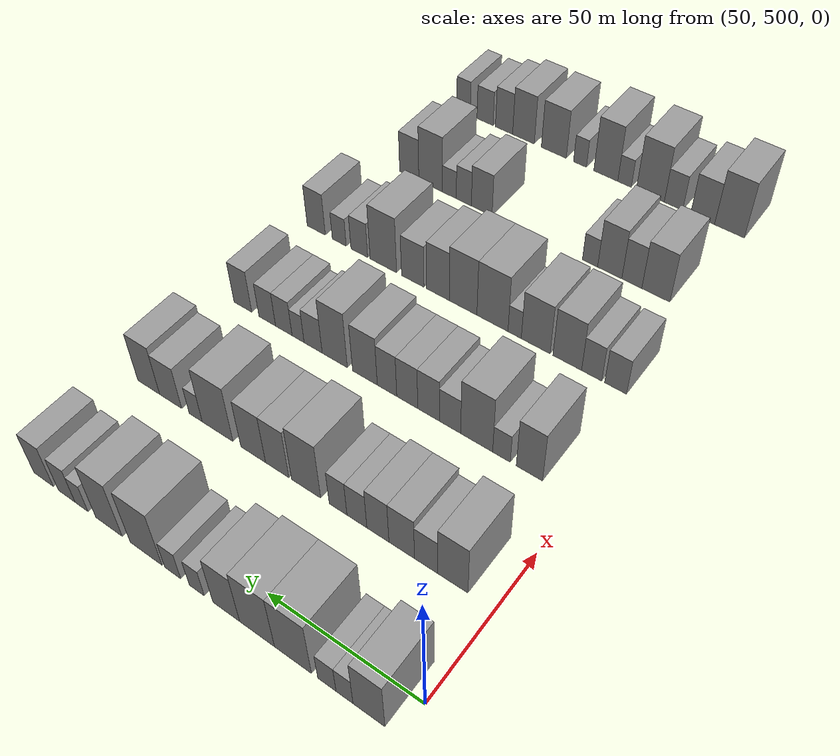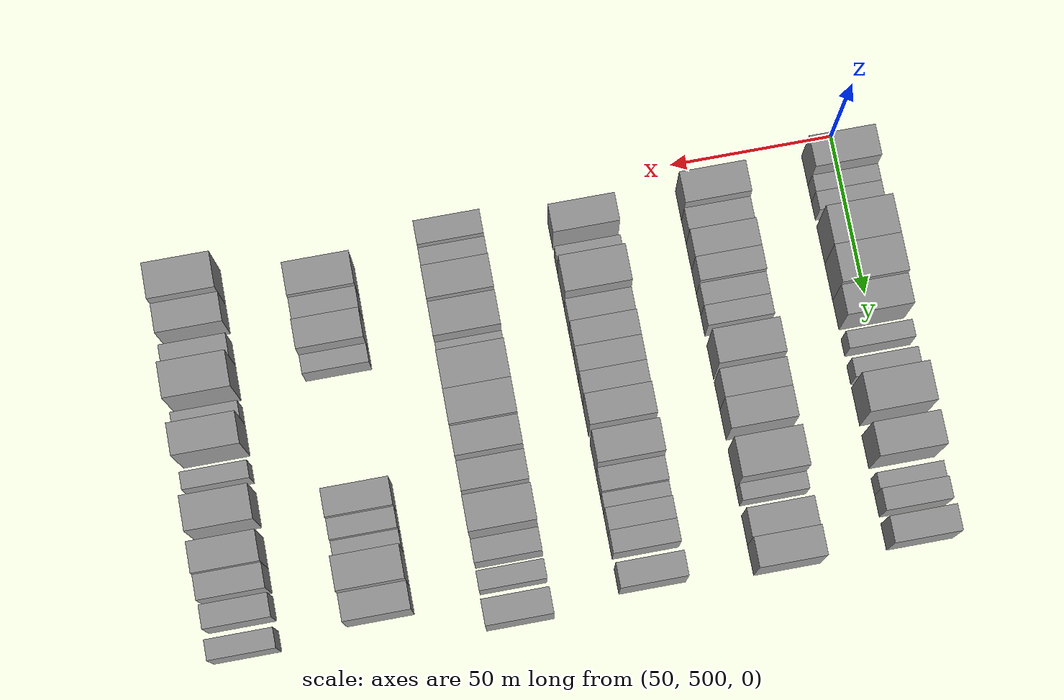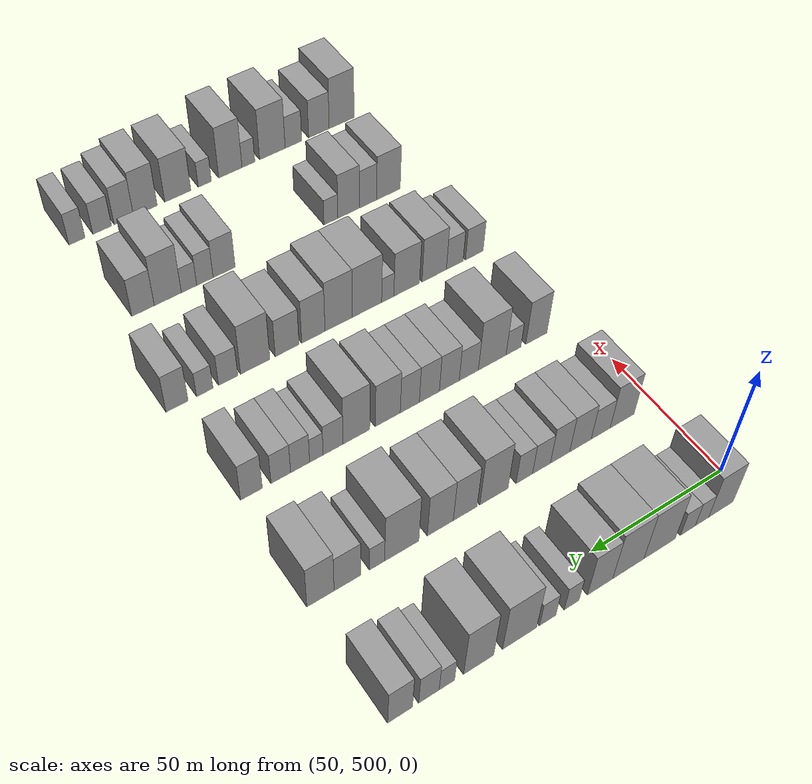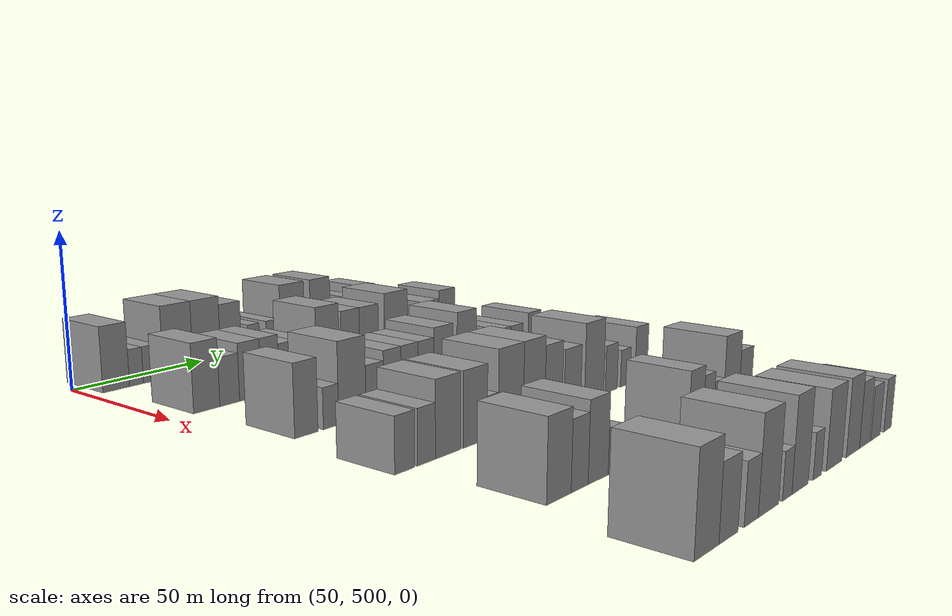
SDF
<sdf version="1.6">
 <world name="default">
  <model name="building_130">
   <static>1</static>
   <pose>50.0000 509.2486 0 0.000000 0.000000 0.000000</pose>
   <link name="link">
    <pose>0 0 10.50 0 0 0</pose>
    <collision name="collision"><geometry><box><size>20.0000 9.6193 21.0000</size></box></geometry></collision>
    <visual name="visual">
     <cast_shadows>0</cast_shadows>
     <geometry><box><size>20.0000 9.6193 21.0000</size></box></geometry>
     <material>
      <script>
       <uri>model://grey_wall/materials/scripts</uri>
       <uri>model://grey_wall/materials/textures</uri>
       <name>vrc/grey_wall</name>
      </script>
     </material>
    </visual>
   </link>
  </model>
  <model name="building_131">
   <static>1</static>
   <pose>50.0000 516.6733 0 0.000000 0.000000 0.000000</pose>
   <link name="link">
    <pose>0 0 6.00 0 0 0</pose>
    <collision name="collision"><geometry><box><size>20.0000 5.2300 12.0000</size></box></geometry></collision>
    <visual name="visual">
     <cast_shadows>0</cast_shadows>
     <geometry><box><size>20.0000 5.2300 12.0000</size></box></geometry>
     <material>
      <script>
       <uri>model://grey_wall/materials/scripts</uri>
       <uri>model://grey_wall/materials/textures</uri>
       <name>vrc/grey_wall</name>
      </script>
     </material>
    </visual>
   </link>
  </model>
  <model name="building_132">
   <static>1</static>
   <pose>50.0000 522.1440 0 0.000000 0.000000 0.000000</pose>
   <link name="link">
    <pose>0 0 6.00 0 0 0</pose>
    <collision name="collision"><geometry><box><size>20.0000 5.7116 12.0000</size></box></geometry></collision>
    <visual name="visual">
     <cast_shadows>0</cast_shadows>
     <geometry><box><size>20.0000 5.7116 12.0000</size></box></geometry>
     <material>
      <script>
       <uri>model://grey_wall/materials/scripts</uri>
       <uri>model://grey_wall/materials/textures</uri>
       <name>vrc/grey_wall</name>
      </script>
     </material>
    </visual>
   </link>
  </model>
  <model name="building_133">
   <static>1</static>
   <pose>50.0000 532.9464 0 0.000000 0.000000 0.000000</pose>
   <link name="link">
    <pose>0 0 12.00 0 0 0</pose>
    <collision name="collision"><geometry><box><size>20.0000 11.8932 24.0000</size></box></geometry></collision>
    <visual name="visual">
     <cast_shadows>0</cast_shadows>
     <geometry><box><size>20.0000 11.8932 24.0000</size></box></geometry>
     <material>
      <script>
       <uri>model://grey_wall/materials/scripts</uri>
       <uri>model://grey_wall/materials/textures</uri>
       <name>vrc/grey_wall</name>
      </script>
     </material>
    </visual>
   </link>
  </model>
  <model name="building_134">
   <static>1</static>
   <pose>50.0000 544.6984 0 0.000000 0.000000 0.000000</pose>
   <link name="link">
    <pose>0 0 12.00 0 0 0</pose>
    <collision name="collision"><geometry><box><size>20.0000 11.6107 24.0000</size></box></geometry></collision>
    <visual name="visual">
     <cast_shadows>0</cast_shadows>
     <geometry><box><size>20.0000 11.6107 24.0000</size></box></geometry>
     <material>
      <script>
       <uri>model://grey_wall/materials/scripts</uri>
       <uri>model://grey_wall/materials/textures</uri>
       <name>vrc/grey_wall</name>
      </script>
     </material>
    </visual>
   </link>
  </model>
  <model name="building_135">
   <static>1</static>
   <pose>50.0000 555.0788 0 0.000000 0.000000 0.000000</pose>
   <link name="link">
    <pose>0 0 10.50 0 0 0</pose>
    <collision name="collision"><geometry><box><size>20.0000 9.1502 21.0000</size></box></geometry></collision>
    <visual name="visual">
     <cast_shadows>0</cast_shadows>
     <geometry><box><size>20.0000 9.1502 21.0000</size></box></geometry>
     <material>
      <script>
       <uri>model://grey_wall/materials/scripts</uri>
       <uri>model://grey_wall/materials/textures</uri>
       <name>vrc/grey_wall</name>
      </script>
     </material>
    </visual>
   </link>
  </model>
  <model name="building_136">
   <static>1</static>
   <pose>50.0000 565.3032 0 0.000000 0.000000 0.000000</pose>
   <link name="link">
    <pose>0 0 6.00 0 0 0</pose>
    <collision name="collision"><geometry><box><size>20.0000 5.2984 12.0000</size></box></geometry></collision>
    <visual name="visual">
     <cast_shadows>0</cast_shadows>
     <geometry><box><size>20.0000 5.2984 12.0000</size></box></geometry>
     <material>
      <script>
       <uri>model://grey_wall/materials/scripts</uri>
       <uri>model://grey_wall/materials/textures</uri>
       <name>vrc/grey_wall</name>
      </script>
     </material>
    </visual>
   </link>
  </model>
  <model name="building_137">
   <static>1</static>
   <pose>50.0000 573.8199 0 0.000000 0.000000 0.000000</pose>
   <link name="link">
    <pose>0 0 6.00 0 0 0</pose>
    <collision name="collision"><geometry><box><size>20.0000 5.7351 12.0000</size></box></geometry></collision>
    <visual name="visual">
     <cast_shadows>0</cast_shadows>
     <geometry><box><size>20.0000 5.7351 12.0000</size></box></geometry>
     <material>
      <script>
       <uri>model://grey_wall/materials/scripts</uri>
       <uri>model://grey_wall/materials/textures</uri>
       <name>vrc/grey_wall</name>
      </script>
     </material>
    </visual>
   </link>
  </model>
  <model name="building_138">
   <static>1</static>
   <pose>50.0000 583.5633 0 0.000000 0.000000 0.000000</pose>
   <link name="link">
    <pose>0 0 12.00 0 0 0</pose>
    <collision name="collision"><geometry><box><size>20.0000 11.7516 24.0000</size></box></geometry></collision>
    <visual name="visual">
     <cast_shadows>0</cast_shadows>
     <geometry><box><size>20.0000 11.7516 24.0000</size></box></geometry>
     <material>
      <script>
       <uri>model://grey_wall/materials/scripts</uri>
       <uri>model://grey_wall/materials/textures</uri>
       <name>vrc/grey_wall</name>
      </script>
     </material>
    </visual>
   </link>
  </model>
  <model name="building_139">
   <static>1</static>
   <pose>50.0000 597.5009 0 0.000000 0.000000 0.000000</pose>
   <link name="link">
    <pose>0 0 12.00 0 0 0</pose>
    <collision name="collision"><geometry><box><size>20.0000 10.1237 24.0000</size></box></geometry></collision>
    <visual name="visual">
     <cast_shadows>0</cast_shadows>
     <geometry><box><size>20.0000 10.1237 24.0000</size></box></geometry>
     <material>
      <script>
       <uri>model://grey_wall/materials/scripts</uri>
       <uri>model://grey_wall/materials/textures</uri>
       <name>vrc/grey_wall</name>
      </script>
     </material>
    </visual>
   </link>
  </model>
  <model name="building_140">
   <static>1</static>
   <pose>50.0000 608.1023 0 0.000000 0.000000 0.000000</pose>
   <link name="link">
    <pose>0 0 6.00 0 0 0</pose>
    <collision name="collision"><geometry><box><size>20.0000 5.0792 12.0000</size></box></geometry></collision>
    <visual name="visual">
     <cast_shadows>0</cast_shadows>
     <geometry><box><size>20.0000 5.0792 12.0000</size></box></geometry>
     <material>
      <script>
       <uri>model://grey_wall/materials/scripts</uri>
       <uri>model://grey_wall/materials/textures</uri>
       <name>vrc/grey_wall</name>
      </script>
     </material>
    </visual>
   </link>
  </model>
  <model name="building_141">
   <static>1</static>
   <pose>50.0000 613.9682 0 0.000000 0.000000 0.000000</pose>
   <link name="link">
    <pose>0 0 7.50 0 0 0</pose>
    <collision name="collision"><geometry><box><size>20.0000 6.6525 15.0000</size></box></geometry></collision>
    <visual name="visual">
     <cast_shadows>0</cast_shadows>
     <geometry><box><size>20.0000 6.6525 15.0000</size></box></geometry>
     <material>
      <script>
       <uri>model://grey_wall/materials/scripts</uri>
       <uri>model://grey_wall/materials/textures</uri>
       <name>vrc/grey_wall</name>
      </script>
     </material>
    </visual>
   </link>
  </model>
  <model name="building_142">
   <static>1</static>
   <pose>50.0000 623.2729 0 0.000000 0.000000 0.000000</pose>
   <link name="link">
    <pose>0 0 9.00 0 0 0</pose>
    <collision name="collision"><geometry><box><size>20.0000 7.9570 18.0000</size></box></geometry></collision>
    <visual name="visual">
     <cast_shadows>0</cast_shadows>
     <geometry><box><size>20.0000 7.9570 18.0000</size></box></geometry>
     <material>
      <script>
       <uri>model://grey_wall/materials/scripts</uri>
       <uri>model://grey_wall/materials/textures</uri>
       <name>vrc/grey_wall</name>
      </script>
     </material>
    </visual>
   </link>
  </model>
  <model name="building_251">
   <static>1</static>
   <pose>90.0000 513.0584 0 0.000000 0.000000 0.000000</pose>
   <link name="link">
    <pose>0 0 10.50 0 0 0</pose>
    <collision name="collision"><geometry><box><size>20.0000 9.5752 21.0000</size></box></geometry></collision>
    <visual name="visual">
     <cast_shadows>0</cast_shadows>
     <geometry><box><size>20.0000 9.5752 21.0000</size></box></geometry>
     <material>
      <script>
       <uri>model://grey_wall/materials/scripts</uri>
       <uri>model://grey_wall/materials/textures</uri>
       <name>vrc/grey_wall</name>
      </script>
     </material>
    </visual>
   </link>
  </model>
  <model name="building_252">
   <static>1</static>
   <pose>90.0000 521.5767 0 0.000000 0.000000 0.000000</pose>
   <link name="link">
    <pose>0 0 7.50 0 0 0</pose>
    <collision name="collision"><geometry><box><size>20.0000 7.4614 15.0000</size></box></geometry></collision>
    <visual name="visual">
     <cast_shadows>0</cast_shadows>
     <geometry><box><size>20.0000 7.4614 15.0000</size></box></geometry>
     <material>
      <script>
       <uri>model://grey_wall/materials/scripts</uri>
       <uri>model://grey_wall/materials/textures</uri>
       <name>vrc/grey_wall</name>
      </script>
     </material>
    </visual>
   </link>
  </model>
  <model name="building_253">
   <static>1</static>
   <pose>90.0000 529.5255 0 0.000000 0.000000 0.000000</pose>
   <link name="link">
    <pose>0 0 9.00 0 0 0</pose>
    <collision name="collision"><geometry><box><size>20.0000 8.4363 18.0000</size></box></geometry></collision>
    <visual name="visual">
     <cast_shadows>0</cast_shadows>
     <geometry><box><size>20.0000 8.4363 18.0000</size></box></geometry>
     <material>
      <script>
       <uri>model://grey_wall/materials/scripts</uri>
       <uri>model://grey_wall/materials/textures</uri>
       <name>vrc/grey_wall</name>
      </script>
     </material>
    </visual>
   </link>
  </model>
  <model name="building_254">
   <static>1</static>
   <pose>90.0000 537.4554 0 0.000000 0.000000 0.000000</pose>
   <link name="link">
    <pose>0 0 9.00 0 0 0</pose>
    <collision name="collision"><geometry><box><size>20.0000 7.4234 18.0000</size></box></geometry></collision>
    <visual name="visual">
     <cast_shadows>0</cast_shadows>
     <geometry><box><size>20.0000 7.4234 18.0000</size></box></geometry>
     <material>
      <script>
       <uri>model://grey_wall/materials/scripts</uri>
       <uri>model://grey_wall/materials/textures</uri>
       <name>vrc/grey_wall</name>
      </script>
     </material>
    </visual>
   </link>
  </model>
  <model name="building_255">
   <static>1</static>
   <pose>90.0000 544.5728 0 0.000000 0.000000 0.000000</pose>
   <link name="link">
    <pose>0 0 7.50 0 0 0</pose>
    <collision name="collision"><geometry><box><size>20.0000 6.8114 15.0000</size></box></geometry></collision>
    <visual name="visual">
     <cast_shadows>0</cast_shadows>
     <geometry><box><size>20.0000 6.8114 15.0000</size></box></geometry>
     <material>
      <script>
       <uri>model://grey_wall/materials/scripts</uri>
       <uri>model://grey_wall/materials/textures</uri>
       <name>vrc/grey_wall</name>
      </script>
     </material>
    </visual>
   </link>
  </model>
  <model name="building_256">
   <static>1</static>
   <pose>90.0000 551.0683 0 0.000000 0.000000 0.000000</pose>
   <link name="link">
    <pose>0 0 7.50 0 0 0</pose>
    <collision name="collision"><geometry><box><size>20.0000 6.1797 15.0000</size></box></geometry></collision>
    <visual name="visual">
     <cast_shadows>0</cast_shadows>
     <geometry><box><size>20.0000 6.1797 15.0000</size></box></geometry>
     <material>
      <script>
       <uri>model://grey_wall/materials/scripts</uri>
       <uri>model://grey_wall/materials/textures</uri>
       <name>vrc/grey_wall</name>
      </script>
     </material>
    </visual>
   </link>
  </model>
  <model name="building_257">
   <static>1</static>
   <pose>90.0000 562.3625 0 0.000000 0.000000 0.000000</pose>
   <link name="link">
    <pose>0 0 12.00 0 0 0</pose>
    <collision name="collision"><geometry><box><size>20.0000 10.4087 24.0000</size></box></geometry></collision>
    <visual name="visual">
     <cast_shadows>0</cast_shadows>
     <geometry><box><size>20.0000 10.4087 24.0000</size></box></geometry>
     <material>
      <script>
       <uri>model://grey_wall/materials/scripts</uri>
       <uri>model://grey_wall/materials/textures</uri>
       <name>vrc/grey_wall</name>
      </script>
     </material>
    </visual>
   </link>
  </model>
  <model name="building_258">
   <static>1</static>
   <pose>90.0000 572.8558 0 0.000000 0.000000 0.000000</pose>
   <link name="link">
    <pose>0 0 10.50 0 0 0</pose>
    <collision name="collision"><geometry><box><size>20.0000 8.5778 21.0000</size></box></geometry></collision>
    <visual name="visual">
     <cast_shadows>0</cast_shadows>
     <geometry><box><size>20.0000 8.5778 21.0000</size></box></geometry>
     <material>
      <script>
       <uri>model://grey_wall/materials/scripts</uri>
       <uri>model://grey_wall/materials/textures</uri>
       <name>vrc/grey_wall</name>
      </script>
     </material>
    </visual>
   </link>
  </model>
  <model name="building_259">
   <static>1</static>
   <pose>90.0000 581.7766 0 0.000000 0.000000 0.000000</pose>
   <link name="link">
    <pose>0 0 10.50 0 0 0</pose>
    <collision name="collision"><geometry><box><size>20.0000 9.2639 21.0000</size></box></geometry></collision>
    <visual name="visual">
     <cast_shadows>0</cast_shadows>
     <geometry><box><size>20.0000 9.2639 21.0000</size></box></geometry>
     <material>
      <script>
       <uri>model://grey_wall/materials/scripts</uri>
       <uri>model://grey_wall/materials/textures</uri>
       <name>vrc/grey_wall</name>
      </script>
     </material>
    </visual>
   </link>
  </model>
  <model name="building_260">
   <static>1</static>
   <pose>90.0000 595.3792 0 0.000000 0.000000 0.000000</pose>
   <link name="link">
    <pose>0 0 12.00 0 0 0</pose>
    <collision name="collision"><geometry><box><size>20.0000 11.9413 24.0000</size></box></geometry></collision>
    <visual name="visual">
     <cast_shadows>0</cast_shadows>
     <geometry><box><size>20.0000 11.9413 24.0000</size></box></geometry>
     <material>
      <script>
       <uri>model://grey_wall/materials/scripts</uri>
       <uri>model://grey_wall/materials/textures</uri>
       <name>vrc/grey_wall</name>
      </script>
     </material>
    </visual>
   </link>
  </model>
  <model name="building_261">
   <static>1</static>
   <pose>90.0000 603.9198 0 0.000000 0.000000 0.000000</pose>
   <link name="link">
    <pose>0 0 6.00 0 0 0</pose>
    <collision name="collision"><geometry><box><size>20.0000 5.1398 12.0000</size></box></geometry></collision>
    <visual name="visual">
     <cast_shadows>0</cast_shadows>
     <geometry><box><size>20.0000 5.1398 12.0000</size></box></geometry>
     <material>
      <script>
       <uri>model://grey_wall/materials/scripts</uri>
       <uri>model://grey_wall/materials/textures</uri>
       <name>vrc/grey_wall</name>
      </script>
     </material>
    </visual>
   </link>
  </model>
  <model name="building_262">
   <static>1</static>
   <pose>90.0000 613.9476 0 0.000000 0.000000 0.000000</pose>
   <link name="link">
    <pose>0 0 9.00 0 0 0</pose>
    <collision name="collision"><geometry><box><size>20.0000 8.9159 18.0000</size></box></geometry></collision>
    <visual name="visual">
     <cast_shadows>0</cast_shadows>
     <geometry><box><size>20.0000 8.9159 18.0000</size></box></geometry>
     <material>
      <script>
       <uri>model://grey_wall/materials/scripts</uri>
       <uri>model://grey_wall/materials/textures</uri>
       <name>vrc/grey_wall</name>
      </script>
     </material>
    </visual>
   </link>
  </model>
  <model name="building_263">
   <static>1</static>
   <pose>90.0000 622.9202 0 0.000000 0.000000 0.000000</pose>
   <link name="link">
    <pose>0 0 10.50 0 0 0</pose>
    <collision name="collision"><geometry><box><size>20.0000 9.0294 21.0000</size></box></geometry></collision>
    <visual name="visual">
     <cast_shadows>0</cast_shadows>
     <geometry><box><size>20.0000 9.0294 21.0000</size></box></geometry>
     <material>
      <script>
       <uri>model://grey_wall/materials/scripts</uri>
       <uri>model://grey_wall/materials/textures</uri>
       <name>vrc/grey_wall</name>
      </script>
     </material>
    </visual>
   </link>
  </model>
  <model name="building_386">
   <static>1</static>
   <pose>130.0000 515.2641 0 0.000000 0.000000 0.000000</pose>
   <link name="link">
    <pose>0 0 10.50 0 0 0</pose>
    <collision name="collision"><geometry><box><size>20.0000 8.6406 21.0000</size></box></geometry></collision>
    <visual name="visual">
     <cast_shadows>0</cast_shadows>
     <geometry><box><size>20.0000 8.6406 21.0000</size></box></geometry>
     <material>
      <script>
       <uri>model://grey_wall/materials/scripts</uri>
       <uri>model://grey_wall/materials/textures</uri>
       <name>vrc/grey_wall</name>
      </script>
     </material>
    </visual>
   </link>
  </model>
  <model name="building_387">
   <static>1</static>
   <pose>130.0000 524.5528 0 0.000000 0.000000 0.000000</pose>
   <link name="link">
    <pose>0 0 6.00 0 0 0</pose>
    <collision name="collision"><geometry><box><size>20.0000 5.9367 12.0000</size></box></geometry></collision>
    <visual name="visual">
     <cast_shadows>0</cast_shadows>
     <geometry><box><size>20.0000 5.9367 12.0000</size></box></geometry>
     <material>
      <script>
       <uri>model://grey_wall/materials/scripts</uri>
       <uri>model://grey_wall/materials/textures</uri>
       <name>vrc/grey_wall</name>
      </script>
     </material>
    </visual>
   </link>
  </model>
  <model name="building_388">
   <static>1</static>
   <pose>130.0000 533.0314 0 0.000000 0.000000 0.000000</pose>
   <link name="link">
    <pose>0 0 12.00 0 0 0</pose>
    <collision name="collision"><geometry><box><size>20.0000 11.0206 24.0000</size></box></geometry></collision>
    <visual name="visual">
     <cast_shadows>0</cast_shadows>
     <geometry><box><size>20.0000 11.0206 24.0000</size></box></geometry>
     <material>
      <script>
       <uri>model://grey_wall/materials/scripts</uri>
       <uri>model://grey_wall/materials/textures</uri>
       <name>vrc/grey_wall</name>
      </script>
     </material>
    </visual>
   </link>
  </model>
  <model name="building_389">
   <static>1</static>
   <pose>130.0000 542.2891 0 0.000000 0.000000 0.000000</pose>
   <link name="link">
    <pose>0 0 7.50 0 0 0</pose>
    <collision name="collision"><geometry><box><size>20.0000 7.4950 15.0000</size></box></geometry></collision>
    <visual name="visual">
     <cast_shadows>0</cast_shadows>
     <geometry><box><size>20.0000 7.4950 15.0000</size></box></geometry>
     <material>
      <script>
       <uri>model://grey_wall/materials/scripts</uri>
       <uri>model://grey_wall/materials/textures</uri>
       <name>vrc/grey_wall</name>
      </script>
     </material>
    </visual>
   </link>
  </model>
  <model name="building_390">
   <static>1</static>
   <pose>130.0000 549.8821 0 0.000000 0.000000 0.000000</pose>
   <link name="link">
    <pose>0 0 9.00 0 0 0</pose>
    <collision name="collision"><geometry><box><size>20.0000 7.6910 18.0000</size></box></geometry></collision>
    <visual name="visual">
     <cast_shadows>0</cast_shadows>
     <geometry><box><size>20.0000 7.6910 18.0000</size></box></geometry>
     <material>
      <script>
       <uri>model://grey_wall/materials/scripts</uri>
       <uri>model://grey_wall/materials/textures</uri>
       <name>vrc/grey_wall</name>
      </script>
     </material>
    </visual>
   </link>
  </model>
  <model name="building_391">
   <static>1</static>
   <pose>130.0000 557.5513 0 0.000000 0.000000 0.000000</pose>
   <link name="link">
    <pose>0 0 9.00 0 0 0</pose>
    <collision name="collision"><geometry><box><size>20.0000 7.6474 18.0000</size></box></geometry></collision>
    <visual name="visual">
     <cast_shadows>0</cast_shadows>
     <geometry><box><size>20.0000 7.6474 18.0000</size></box></geometry>
     <material>
      <script>
       <uri>model://grey_wall/materials/scripts</uri>
       <uri>model://grey_wall/materials/textures</uri>
       <name>vrc/grey_wall</name>
      </script>
     </material>
    </visual>
   </link>
  </model>
  <model name="building_392">
   <static>1</static>
   <pose>130.0000 564.9790 0 0.000000 0.000000 0.000000</pose>
   <link name="link">
    <pose>0 0 9.00 0 0 0</pose>
    <collision name="collision"><geometry><box><size>20.0000 7.2078 18.0000</size></box></geometry></collision>
    <visual name="visual">
     <cast_shadows>0</cast_shadows>
     <geometry><box><size>20.0000 7.2078 18.0000</size></box></geometry>
     <material>
      <script>
       <uri>model://grey_wall/materials/scripts</uri>
       <uri>model://grey_wall/materials/textures</uri>
       <name>vrc/grey_wall</name>
      </script>
     </material>
    </visual>
   </link>
  </model>
  <model name="building_393">
   <static>1</static>
   <pose>130.0000 573.2520 0 0.000000 0.000000 0.000000</pose>
   <link name="link">
    <pose>0 0 10.50 0 0 0</pose>
    <collision name="collision"><geometry><box><size>20.0000 9.3383 21.0000</size></box></geometry></collision>
    <visual name="visual">
     <cast_shadows>0</cast_shadows>
     <geometry><box><size>20.0000 9.3383 21.0000</size></box></geometry>
     <material>
      <script>
       <uri>model://grey_wall/materials/scripts</uri>
       <uri>model://grey_wall/materials/textures</uri>
       <name>vrc/grey_wall</name>
      </script>
     </material>
    </visual>
   </link>
  </model>
  <model name="building_394">
   <static>1</static>
   <pose>130.0000 584.8050 0 0.000000 0.000000 0.000000</pose>
   <link name="link">
    <pose>0 0 12.00 0 0 0</pose>
    <collision name="collision"><geometry><box><size>20.0000 9.7677 24.0000</size></box></geometry></collision>
    <visual name="visual">
     <cast_shadows>0</cast_shadows>
     <geometry><box><size>20.0000 9.7677 24.0000</size></box></geometry>
     <material>
      <script>
       <uri>model://grey_wall/materials/scripts</uri>
       <uri>model://grey_wall/materials/textures</uri>
       <name>vrc/grey_wall</name>
      </script>
     </material>
    </visual>
   </link>
  </model>
  <model name="building_395">
   <static>1</static>
   <pose>130.0000 593.2532 0 0.000000 0.000000 0.000000</pose>
   <link name="link">
    <pose>0 0 7.50 0 0 0</pose>
    <collision name="collision"><geometry><box><size>20.0000 7.1286 15.0000</size></box></geometry></collision>
    <visual name="visual">
     <cast_shadows>0</cast_shadows>
     <geometry><box><size>20.0000 7.1286 15.0000</size></box></geometry>
     <material>
      <script>
       <uri>model://grey_wall/materials/scripts</uri>
       <uri>model://grey_wall/materials/textures</uri>
       <name>vrc/grey_wall</name>
      </script>
     </material>
    </visual>
   </link>
  </model>
  <model name="building_396">
   <static>1</static>
   <pose>130.0000 599.2206 0 0.000000 0.000000 0.000000</pose>
   <link name="link">
    <pose>0 0 6.00 0 0 0</pose>
    <collision name="collision"><geometry><box><size>20.0000 4.8062 12.0000</size></box></geometry></collision>
    <visual name="visual">
     <cast_shadows>0</cast_shadows>
     <geometry><box><size>20.0000 4.8062 12.0000</size></box></geometry>
     <material>
      <script>
       <uri>model://grey_wall/materials/scripts</uri>
       <uri>model://grey_wall/materials/textures</uri>
       <name>vrc/grey_wall</name>
      </script>
     </material>
    </visual>
   </link>
  </model>
  <model name="building_397">
   <static>1</static>
   <pose>130.0000 604.9699 0 0.000000 0.000000 0.000000</pose>
   <link name="link">
    <pose>0 0 7.50 0 0 0</pose>
    <collision name="collision"><geometry><box><size>20.0000 6.6923 15.0000</size></box></geometry></collision>
    <visual name="visual">
     <cast_shadows>0</cast_shadows>
     <geometry><box><size>20.0000 6.6923 15.0000</size></box></geometry>
     <material>
      <script>
       <uri>model://grey_wall/materials/scripts</uri>
       <uri>model://grey_wall/materials/textures</uri>
       <name>vrc/grey_wall</name>
      </script>
     </material>
    </visual>
   </link>
  </model>
  <model name="building_398">
   <static>1</static>
   <pose>130.0000 611.7338 0 0.000000 0.000000 0.000000</pose>
   <link name="link">
    <pose>0 0 7.50 0 0 0</pose>
    <collision name="collision"><geometry><box><size>20.0000 6.8356 15.0000</size></box></geometry></collision>
    <visual name="visual">
     <cast_shadows>0</cast_shadows>
     <geometry><box><size>20.0000 6.8356 15.0000</size></box></geometry>
     <material>
      <script>
       <uri>model://grey_wall/materials/scripts</uri>
       <uri>model://grey_wall/materials/textures</uri>
       <name>vrc/grey_wall</name>
      </script>
     </material>
    </visual>
   </link>
  </model>
  <model name="building_399">
   <static>1</static>
   <pose>130.0000 621.8869 0 0.000000 0.000000 0.000000</pose>
   <link name="link">
    <pose>0 0 9.00 0 0 0</pose>
    <collision name="collision"><geometry><box><size>20.0000 7.4707 18.0000</size></box></geometry></collision>
    <visual name="visual">
     <cast_shadows>0</cast_shadows>
     <geometry><box><size>20.0000 7.4707 18.0000</size></box></geometry>
     <material>
      <script>
       <uri>model://grey_wall/materials/scripts</uri>
       <uri>model://grey_wall/materials/textures</uri>
       <name>vrc/grey_wall</name>
      </script>
     </material>
    </visual>
   </link>
  </model>
  <model name="building_532">
   <static>1</static>
   <pose>170.0000 510.7256 0 0.000000 0.000000 0.000000</pose>
   <link name="link">
    <pose>0 0 7.50 0 0 0</pose>
    <collision name="collision"><geometry><box><size>20.0000 7.4175 15.0000</size></box></geometry></collision>
    <visual name="visual">
     <cast_shadows>0</cast_shadows>
     <geometry><box><size>20.0000 7.4175 15.0000</size></box></geometry>
     <material>
      <script>
       <uri>model://grey_wall/materials/scripts</uri>
       <uri>model://grey_wall/materials/textures</uri>
       <name>vrc/grey_wall</name>
      </script>
     </material>
    </visual>
   </link>
  </model>
  <model name="building_533">
   <static>1</static>
   <pose>170.0000 518.9055 0 0.000000 0.000000 0.000000</pose>
   <link name="link">
    <pose>0 0 7.50 0 0 0</pose>
    <collision name="collision"><geometry><box><size>20.0000 6.9422 15.0000</size></box></geometry></collision>
    <visual name="visual">
     <cast_shadows>0</cast_shadows>
     <geometry><box><size>20.0000 6.9422 15.0000</size></box></geometry>
     <material>
      <script>
       <uri>model://grey_wall/materials/scripts</uri>
       <uri>model://grey_wall/materials/textures</uri>
       <name>vrc/grey_wall</name>
      </script>
     </material>
    </visual>
   </link>
  </model>
  <model name="building_534">
   <static>1</static>
   <pose>170.0000 527.4141 0 0.000000 0.000000 0.000000</pose>
   <link name="link">
    <pose>0 0 10.50 0 0 0</pose>
    <collision name="collision"><geometry><box><size>20.0000 10.0751 21.0000</size></box></geometry></collision>
    <visual name="visual">
     <cast_shadows>0</cast_shadows>
     <geometry><box><size>20.0000 10.0751 21.0000</size></box></geometry>
     <material>
      <script>
       <uri>model://grey_wall/materials/scripts</uri>
       <uri>model://grey_wall/materials/textures</uri>
       <name>vrc/grey_wall</name>
      </script>
     </material>
    </visual>
   </link>
  </model>
  <model name="building_535">
   <static>1</static>
   <pose>170.0000 538.6483 0 0.000000 0.000000 0.000000</pose>
   <link name="link">
    <pose>0 0 10.50 0 0 0</pose>
    <collision name="collision"><geometry><box><size>20.0000 10.3932 21.0000</size></box></geometry></collision>
    <visual name="visual">
     <cast_shadows>0</cast_shadows>
     <geometry><box><size>20.0000 10.3932 21.0000</size></box></geometry>
     <material>
      <script>
       <uri>model://grey_wall/materials/scripts</uri>
       <uri>model://grey_wall/materials/textures</uri>
       <name>vrc/grey_wall</name>
      </script>
     </material>
    </visual>
   </link>
  </model>
  <model name="building_536">
   <static>1</static>
   <pose>170.0000 546.2825 0 0.000000 0.000000 0.000000</pose>
   <link name="link">
    <pose>0 0 6.00 0 0 0</pose>
    <collision name="collision"><geometry><box><size>20.0000 4.8753 12.0000</size></box></geometry></collision>
    <visual name="visual">
     <cast_shadows>0</cast_shadows>
     <geometry><box><size>20.0000 4.8753 12.0000</size></box></geometry>
     <material>
      <script>
       <uri>model://grey_wall/materials/scripts</uri>
       <uri>model://grey_wall/materials/textures</uri>
       <name>vrc/grey_wall</name>
      </script>
     </material>
    </visual>
   </link>
  </model>
  <model name="building_537">
   <static>1</static>
   <pose>170.0000 554.5182 0 0.000000 0.000000 0.000000</pose>
   <link name="link">
    <pose>0 0 12.00 0 0 0</pose>
    <collision name="collision"><geometry><box><size>20.0000 11.5960 24.0000</size></box></geometry></collision>
    <visual name="visual">
     <cast_shadows>0</cast_shadows>
     <geometry><box><size>20.0000 11.5960 24.0000</size></box></geometry>
     <material>
      <script>
       <uri>model://grey_wall/materials/scripts</uri>
       <uri>model://grey_wall/materials/textures</uri>
       <name>vrc/grey_wall</name>
      </script>
     </material>
    </visual>
   </link>
  </model>
  <model name="building_538">
   <static>1</static>
   <pose>170.0000 565.5869 0 0.000000 0.000000 0.000000</pose>
   <link name="link">
    <pose>0 0 12.00 0 0 0</pose>
    <collision name="collision"><geometry><box><size>20.0000 10.5413 24.0000</size></box></geometry></collision>
    <visual name="visual">
     <cast_shadows>0</cast_shadows>
     <geometry><box><size>20.0000 10.5413 24.0000</size></box></geometry>
     <material>
      <script>
       <uri>model://grey_wall/materials/scripts</uri>
       <uri>model://grey_wall/materials/textures</uri>
       <name>vrc/grey_wall</name>
      </script>
     </material>
    </visual>
   </link>
  </model>
  <model name="building_539">
   <static>1</static>
   <pose>170.0000 575.2952 0 0.000000 0.000000 0.000000</pose>
   <link name="link">
    <pose>0 0 10.50 0 0 0</pose>
    <collision name="collision"><geometry><box><size>20.0000 8.8754 21.0000</size></box></geometry></collision>
    <visual name="visual">
     <cast_shadows>0</cast_shadows>
     <geometry><box><size>20.0000 8.8754 21.0000</size></box></geometry>
     <material>
      <script>
       <uri>model://grey_wall/materials/scripts</uri>
       <uri>model://grey_wall/materials/textures</uri>
       <name>vrc/grey_wall</name>
      </script>
     </material>
    </visual>
   </link>
  </model>
  <model name="building_540">
   <static>1</static>
   <pose>170.0000 585.2048 0 0.000000 0.000000 0.000000</pose>
   <link name="link">
    <pose>0 0 9.00 0 0 0</pose>
    <collision name="collision"><geometry><box><size>20.0000 8.9437 18.0000</size></box></geometry></collision>
    <visual name="visual">
     <cast_shadows>0</cast_shadows>
     <geometry><box><size>20.0000 8.9437 18.0000</size></box></geometry>
     <material>
      <script>
       <uri>model://grey_wall/materials/scripts</uri>
       <uri>model://grey_wall/materials/textures</uri>
       <name>vrc/grey_wall</name>
      </script>
     </material>
    </visual>
   </link>
  </model>
  <model name="building_541">
   <static>1</static>
   <pose>170.0000 597.0909 0 0.000000 0.000000 0.000000</pose>
   <link name="link">
    <pose>0 0 12.00 0 0 0</pose>
    <collision name="collision"><geometry><box><size>20.0000 10.8286 24.0000</size></box></geometry></collision>
    <visual name="visual">
     <cast_shadows>0</cast_shadows>
     <geometry><box><size>20.0000 10.8286 24.0000</size></box></geometry>
     <material>
      <script>
       <uri>model://grey_wall/materials/scripts</uri>
       <uri>model://grey_wall/materials/textures</uri>
       <name>vrc/grey_wall</name>
      </script>
     </material>
    </visual>
   </link>
  </model>
  <model name="building_542">
   <static>1</static>
   <pose>170.0000 606.9902 0 0.000000 0.000000 0.000000</pose>
   <link name="link">
    <pose>0 0 7.50 0 0 0</pose>
    <collision name="collision"><geometry><box><size>20.0000 6.9700 15.0000</size></box></geometry></collision>
    <visual name="visual">
     <cast_shadows>0</cast_shadows>
     <geometry><box><size>20.0000 6.9700 15.0000</size></box></geometry>
     <material>
      <script>
       <uri>model://grey_wall/materials/scripts</uri>
       <uri>model://grey_wall/materials/textures</uri>
       <name>vrc/grey_wall</name>
      </script>
     </material>
    </visual>
   </link>
  </model>
  <model name="building_543">
   <static>1</static>
   <pose>170.0000 615.4217 0 0.000000 0.000000 0.000000</pose>
   <link name="link">
    <pose>0 0 6.00 0 0 0</pose>
    <collision name="collision"><geometry><box><size>20.0000 5.8931 12.0000</size></box></geometry></collision>
    <visual name="visual">
     <cast_shadows>0</cast_shadows>
     <geometry><box><size>20.0000 5.8931 12.0000</size></box></geometry>
     <material>
      <script>
       <uri>model://grey_wall/materials/scripts</uri>
       <uri>model://grey_wall/materials/textures</uri>
       <name>vrc/grey_wall</name>
      </script>
     </material>
    </visual>
   </link>
  </model>
  <model name="building_544">
   <static>1</static>
   <pose>170.0000 625.2713 0 0.000000 0.000000 0.000000</pose>
   <link name="link">
    <pose>0 0 9.00 0 0 0</pose>
    <collision name="collision"><geometry><box><size>20.0000 7.8060 18.0000</size></box></geometry></collision>
    <visual name="visual">
     <cast_shadows>0</cast_shadows>
     <geometry><box><size>20.0000 7.8060 18.0000</size></box></geometry>
     <material>
      <script>
       <uri>model://grey_wall/materials/scripts</uri>
       <uri>model://grey_wall/materials/textures</uri>
       <name>vrc/grey_wall</name>
      </script>
     </material>
    </visual>
   </link>
  </model>
  <model name="building_664">
   <static>1</static>
   <pose>210.0000 519.0333 0 0.000000 0.000000 0.000000</pose>
   <link name="link">
    <pose>0 0 10.50 0 0 0</pose>
    <collision name="collision"><geometry><box><size>20.0000 10.0725 21.0000</size></box></geometry></collision>
    <visual name="visual">
     <cast_shadows>0</cast_shadows>
     <geometry><box><size>20.0000 10.0725 21.0000</size></box></geometry>
     <material>
      <script>
       <uri>model://grey_wall/materials/scripts</uri>
       <uri>model://grey_wall/materials/textures</uri>
       <name>vrc/grey_wall</name>
      </script>
     </material>
    </visual>
   </link>
  </model>
  <model name="building_665">
   <static>1</static>
   <pose>210.0000 527.7075 0 0.000000 0.000000 0.000000</pose>
   <link name="link">
    <pose>0 0 9.00 0 0 0</pose>
    <collision name="collision"><geometry><box><size>20.0000 7.2758 18.0000</size></box></geometry></collision>
    <visual name="visual">
     <cast_shadows>0</cast_shadows>
     <geometry><box><size>20.0000 7.2758 18.0000</size></box></geometry>
     <material>
      <script>
       <uri>model://grey_wall/materials/scripts</uri>
       <uri>model://grey_wall/materials/textures</uri>
       <name>vrc/grey_wall</name>
      </script>
     </material>
    </visual>
   </link>
  </model>
  <model name="building_666">
   <static>1</static>
   <pose>210.0000 535.8245 0 0.000000 0.000000 0.000000</pose>
   <link name="link">
    <pose>0 0 10.50 0 0 0</pose>
    <collision name="collision"><geometry><box><size>20.0000 8.9584 21.0000</size></box></geometry></collision>
    <visual name="visual">
     <cast_shadows>0</cast_shadows>
     <geometry><box><size>20.0000 8.9584 21.0000</size></box></geometry>
     <material>
      <script>
       <uri>model://grey_wall/materials/scripts</uri>
       <uri>model://grey_wall/materials/textures</uri>
       <name>vrc/grey_wall</name>
      </script>
     </material>
    </visual>
   </link>
  </model>
  <model name="building_667">
   <static>1</static>
   <pose>210.0000 543.1576 0 0.000000 0.000000 0.000000</pose>
   <link name="link">
    <pose>0 0 6.00 0 0 0</pose>
    <collision name="collision"><geometry><box><size>20.0000 5.7077 12.0000</size></box></geometry></collision>
    <visual name="visual">
     <cast_shadows>0</cast_shadows>
     <geometry><box><size>20.0000 5.7077 12.0000</size></box></geometry>
     <material>
      <script>
       <uri>model://grey_wall/materials/scripts</uri>
       <uri>model://grey_wall/materials/textures</uri>
       <name>vrc/grey_wall</name>
      </script>
     </material>
    </visual>
   </link>
  </model>
  <model name="building_668">
   <static>1</static>
   <pose>210.0000 585.7442 0 0.000000 0.000000 0.000000</pose>
   <link name="link">
    <pose>0 0 9.00 0 0 0</pose>
    <collision name="collision"><geometry><box><size>20.0000 8.4885 18.0000</size></box></geometry></collision>
    <visual name="visual">
     <cast_shadows>0</cast_shadows>
     <geometry><box><size>20.0000 8.4885 18.0000</size></box></geometry>
     <material>
      <script>
       <uri>model://grey_wall/materials/scripts</uri>
       <uri>model://grey_wall/materials/textures</uri>
       <name>vrc/grey_wall</name>
      </script>
     </material>
    </visual>
   </link>
  </model>
  <model name="building_669">
   <static>1</static>
   <pose>210.0000 593.1350 0 0.000000 0.000000 0.000000</pose>
   <link name="link">
    <pose>0 0 7.50 0 0 0</pose>
    <collision name="collision"><geometry><box><size>20.0000 6.2931 15.0000</size></box></geometry></collision>
    <visual name="visual">
     <cast_shadows>0</cast_shadows>
     <geometry><box><size>20.0000 6.2931 15.0000</size></box></geometry>
     <material>
      <script>
       <uri>model://grey_wall/materials/scripts</uri>
       <uri>model://grey_wall/materials/textures</uri>
       <name>vrc/grey_wall</name>
      </script>
     </material>
    </visual>
   </link>
  </model>
  <model name="building_670">
   <static>1</static>
   <pose>210.0000 599.1890 0 0.000000 0.000000 0.000000</pose>
   <link name="link">
    <pose>0 0 6.00 0 0 0</pose>
    <collision name="collision"><geometry><box><size>20.0000 5.8147 12.0000</size></box></geometry></collision>
    <visual name="visual">
     <cast_shadows>0</cast_shadows>
     <geometry><box><size>20.0000 5.8147 12.0000</size></box></geometry>
     <material>
      <script>
       <uri>model://grey_wall/materials/scripts</uri>
       <uri>model://grey_wall/materials/textures</uri>
       <name>vrc/grey_wall</name>
      </script>
     </material>
    </visual>
   </link>
  </model>
  <model name="building_671">
   <static>1</static>
   <pose>210.0000 607.1502 0 0.000000 0.000000 0.000000</pose>
   <link name="link">
    <pose>0 0 12.00 0 0 0</pose>
    <collision name="collision"><geometry><box><size>20.0000 10.1077 24.0000</size></box></geometry></collision>
    <visual name="visual">
     <cast_shadows>0</cast_shadows>
     <geometry><box><size>20.0000 10.1077 24.0000</size></box></geometry>
     <material>
      <script>
       <uri>model://grey_wall/materials/scripts</uri>
       <uri>model://grey_wall/materials/textures</uri>
       <name>vrc/grey_wall</name>
      </script>
     </material>
    </visual>
   </link>
  </model>
  <model name="building_672">
   <static>1</static>
   <pose>210.0000 616.3659 0 0.000000 0.000000 0.000000</pose>
   <link name="link">
    <pose>0 0 9.00 0 0 0</pose>
    <collision name="collision"><geometry><box><size>20.0000 8.3237 18.0000</size></box></geometry></collision>
    <visual name="visual">
     <cast_shadows>0</cast_shadows>
     <geometry><box><size>20.0000 8.3237 18.0000</size></box></geometry>
     <material>
      <script>
       <uri>model://grey_wall/materials/scripts</uri>
       <uri>model://grey_wall/materials/textures</uri>
       <name>vrc/grey_wall</name>
      </script>
     </material>
    </visual>
   </link>
  </model>
  <model name="building_804">
   <static>1</static>
   <pose>250.0000 513.0235 0 0.000000 0.000000 0.000000</pose>
   <link name="link">
    <pose>0 0 12.00 0 0 0</pose>
    <collision name="collision"><geometry><box><size>20.0000 10.9333 24.0000</size></box></geometry></collision>
    <visual name="visual">
     <cast_shadows>0</cast_shadows>
     <geometry><box><size>20.0000 10.9333 24.0000</size></box></geometry>
     <material>
      <script>
       <uri>model://grey_wall/materials/scripts</uri>
       <uri>model://grey_wall/materials/textures</uri>
       <name>vrc/grey_wall</name>
      </script>
     </material>
    </visual>
   </link>
  </model>
  <model name="building_805">
   <static>1</static>
   <pose>250.0000 522.9550 0 0.000000 0.000000 0.000000</pose>
   <link name="link">
    <pose>0 0 9.00 0 0 0</pose>
    <collision name="collision"><geometry><box><size>20.0000 8.9296 18.0000</size></box></geometry></collision>
    <visual name="visual">
     <cast_shadows>0</cast_shadows>
     <geometry><box><size>20.0000 8.9296 18.0000</size></box></geometry>
     <material>
      <script>
       <uri>model://grey_wall/materials/scripts</uri>
       <uri>model://grey_wall/materials/textures</uri>
       <name>vrc/grey_wall</name>
      </script>
     </material>
    </visual>
   </link>
  </model>
  <model name="building_806">
   <static>1</static>
   <pose>250.0000 533.9567 0 0.000000 0.000000 0.000000</pose>
   <link name="link">
    <pose>0 0 7.50 0 0 0</pose>
    <collision name="collision"><geometry><box><size>20.0000 7.0738 15.0000</size></box></geometry></collision>
    <visual name="visual">
     <cast_shadows>0</cast_shadows>
     <geometry><box><size>20.0000 7.0738 15.0000</size></box></geometry>
     <material>
      <script>
       <uri>model://grey_wall/materials/scripts</uri>
       <uri>model://grey_wall/materials/textures</uri>
       <name>vrc/grey_wall</name>
      </script>
     </material>
    </visual>
   </link>
  </model>
  <model name="building_807">
   <static>1</static>
   <pose>250.0000 542.9097 0 0.000000 0.000000 0.000000</pose>
   <link name="link">
    <pose>0 0 12.00 0 0 0</pose>
    <collision name="collision"><geometry><box><size>20.0000 10.8323 24.0000</size></box></geometry></collision>
    <visual name="visual">
     <cast_shadows>0</cast_shadows>
     <geometry><box><size>20.0000 10.8323 24.0000</size></box></geometry>
     <material>
      <script>
       <uri>model://grey_wall/materials/scripts</uri>
       <uri>model://grey_wall/materials/textures</uri>
       <name>vrc/grey_wall</name>
      </script>
     </material>
    </visual>
   </link>
  </model>
  <model name="building_808">
   <static>1</static>
   <pose>250.0000 552.9994 0 0.000000 0.000000 0.000000</pose>
   <link name="link">
    <pose>0 0 6.00 0 0 0</pose>
    <collision name="collision"><geometry><box><size>20.0000 5.3470 12.0000</size></box></geometry></collision>
    <visual name="visual">
     <cast_shadows>0</cast_shadows>
     <geometry><box><size>20.0000 5.3470 12.0000</size></box></geometry>
     <material>
      <script>
       <uri>model://grey_wall/materials/scripts</uri>
       <uri>model://grey_wall/materials/textures</uri>
       <name>vrc/grey_wall</name>
      </script>
     </material>
    </visual>
   </link>
  </model>
  <model name="building_809">
   <static>1</static>
   <pose>250.0000 560.4952 0 0.000000 0.000000 0.000000</pose>
   <link name="link">
    <pose>0 0 12.00 0 0 0</pose>
    <collision name="collision"><geometry><box><size>20.0000 9.6446 24.0000</size></box></geometry></collision>
    <visual name="visual">
     <cast_shadows>0</cast_shadows>
     <geometry><box><size>20.0000 9.6446 24.0000</size></box></geometry>
     <material>
      <script>
       <uri>model://grey_wall/materials/scripts</uri>
       <uri>model://grey_wall/materials/textures</uri>
       <name>vrc/grey_wall</name>
      </script>
     </material>
    </visual>
   </link>
  </model>
  <model name="building_810">
   <static>1</static>
   <pose>250.0000 570.9731 0 0.000000 0.000000 0.000000</pose>
   <link name="link">
    <pose>0 0 6.00 0 0 0</pose>
    <collision name="collision"><geometry><box><size>20.0000 5.3110 12.0000</size></box></geometry></collision>
    <visual name="visual">
     <cast_shadows>0</cast_shadows>
     <geometry><box><size>20.0000 5.3110 12.0000</size></box></geometry>
     <material>
      <script>
       <uri>model://grey_wall/materials/scripts</uri>
       <uri>model://grey_wall/materials/textures</uri>
       <name>vrc/grey_wall</name>
      </script>
     </material>
    </visual>
   </link>
  </model>
  <model name="building_811">
   <static>1</static>
   <pose>250.0000 581.8616 0 0.000000 0.000000 0.000000</pose>
   <link name="link">
    <pose>0 0 10.50 0 0 0</pose>
    <collision name="collision"><geometry><box><size>20.0000 10.4660 21.0000</size></box></geometry></collision>
    <visual name="visual">
     <cast_shadows>0</cast_shadows>
     <geometry><box><size>20.0000 10.4660 21.0000</size></box></geometry>
     <material>
      <script>
       <uri>model://grey_wall/materials/scripts</uri>
       <uri>model://grey_wall/materials/textures</uri>
       <name>vrc/grey_wall</name>
      </script>
     </material>
    </visual>
   </link>
  </model>
  <model name="building_812">
   <static>1</static>
   <pose>250.0000 594.7448 0 0.000000 0.000000 0.000000</pose>
   <link name="link">
    <pose>0 0 10.50 0 0 0</pose>
    <collision name="collision"><geometry><box><size>20.0000 9.3003 21.0000</size></box></geometry></collision>
    <visual name="visual">
     <cast_shadows>0</cast_shadows>
     <geometry><box><size>20.0000 9.3003 21.0000</size></box></geometry>
     <material>
      <script>
       <uri>model://grey_wall/materials/scripts</uri>
       <uri>model://grey_wall/materials/textures</uri>
       <name>vrc/grey_wall</name>
      </script>
     </material>
    </visual>
   </link>
  </model>
  <model name="building_813">
   <static>1</static>
   <pose>250.0000 603.1463 0 0.000000 0.000000 0.000000</pose>
   <link name="link">
    <pose>0 0 9.00 0 0 0</pose>
    <collision name="collision"><geometry><box><size>20.0000 7.5029 18.0000</size></box></geometry></collision>
    <visual name="visual">
     <cast_shadows>0</cast_shadows>
     <geometry><box><size>20.0000 7.5029 18.0000</size></box></geometry>
     <material>
      <script>
       <uri>model://grey_wall/materials/scripts</uri>
       <uri>model://grey_wall/materials/textures</uri>
       <name>vrc/grey_wall</name>
      </script>
     </material>
    </visual>
   </link>
  </model>
  <model name="building_814">
   <static>1</static>
   <pose>250.0000 611.4772 0 0.000000 0.000000 0.000000</pose>
   <link name="link">
    <pose>0 0 7.50 0 0 0</pose>
    <collision name="collision"><geometry><box><size>20.0000 7.1588 15.0000</size></box></geometry></collision>
    <visual name="visual">
     <cast_shadows>0</cast_shadows>
     <geometry><box><size>20.0000 7.1588 15.0000</size></box></geometry>
     <material>
      <script>
       <uri>model://grey_wall/materials/scripts</uri>
       <uri>model://grey_wall/materials/textures</uri>
       <name>vrc/grey_wall</name>
      </script>
     </material>
    </visual>
   </link>
  </model>
  <model name="building_815">
   <static>1</static>
   <pose>250.0000 621.1023 0 0.000000 0.000000 0.000000</pose>
   <link name="link">
    <pose>0 0 7.50 0 0 0</pose>
    <collision name="collision"><geometry><box><size>20.0000 6.0913 15.0000</size></box></geometry></collision>
    <visual name="visual">
     <cast_shadows>0</cast_shadows>
     <geometry><box><size>20.0000 6.0913 15.0000</size></box></geometry>
     <material>
      <script>
       <uri>model://grey_wall/materials/scripts</uri>
       <uri>model://grey_wall/materials/textures</uri>
       <name>vrc/grey_wall</name>
      </script>
     </material>
    </visual>
   </link>
  </model>
 </world>
</sdf>
